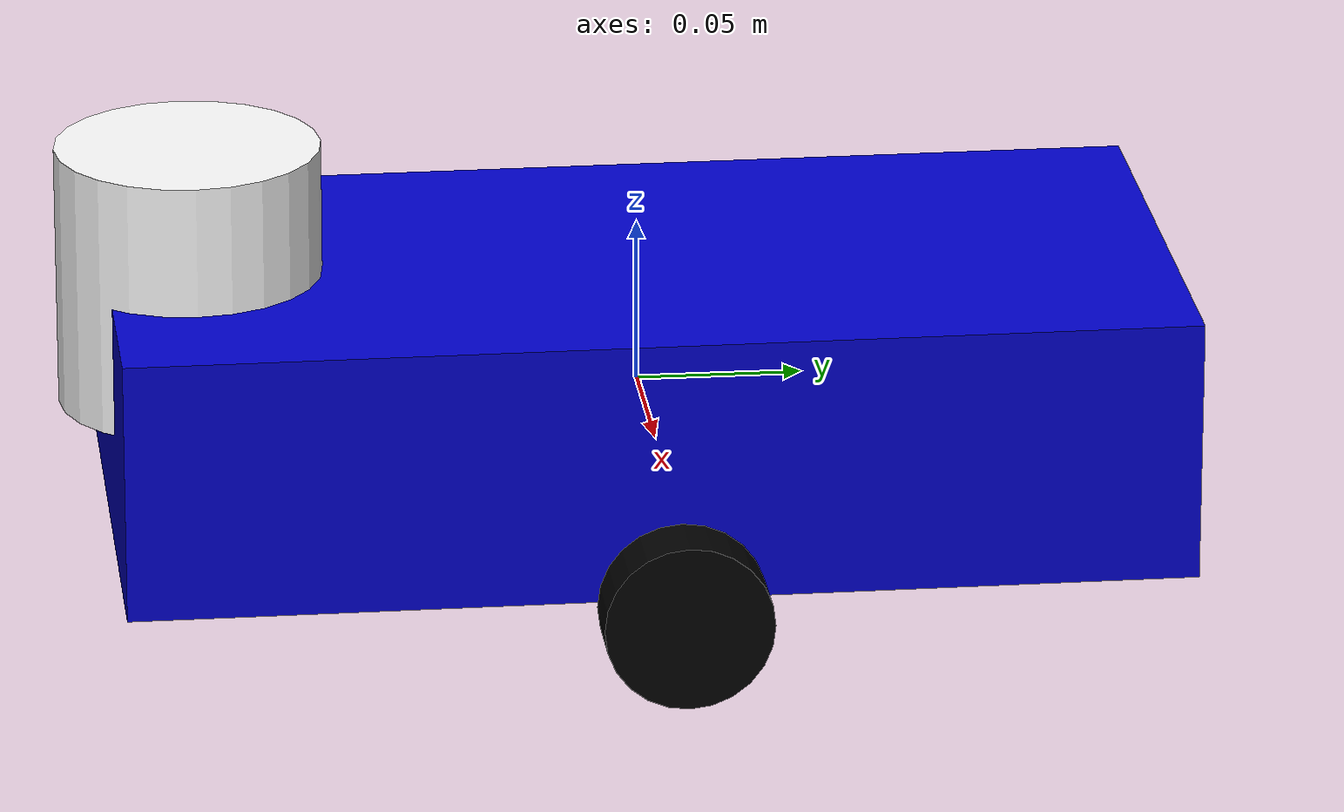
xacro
<?xml version="1.0"?>

<robot name="seeing_sim_car"
	xmlns:xi="http://www.w3.org/2001/XInclude"
	xmlns:gazebo="http://playerstage.sourceforge.net/gazebo/xmlschema/#gz"
	xmlns:model="http://playerstage.sourceforge.net/gazebo/xmlschema/#model"
	xmlns:sensor="http://playerstage.sourceforge.net/gazebo/xmlschema/#sensor"
	xmlns:body="http://playerstage.sourceforge.net/gazebo/xmlschema/#body"
	xmlns:geom="http://playerstage.sourceforge.net/gazebo/xmlschema/#geom"
	xmlns:joint="http://playerstage.sourceforge.net/gazebo/xmlschema/#joint"
	xmlns:controller="http://playerstage.sourceforge.net/gazebo/xmlschema/#controller"
	xmlns:interface="http://playerstage.sourceforge.net/gazebo/xmlschema/#interface"
	xmlns:rendering="http://playerstage.sourceforge.net/gazebo/xmlschema/#rendering"
	xmlns:renderable="http://playerstage.sourceforge.net/gazebo/xmlschema/#renderable"
	xmlns:physics="http://playerstage.sourceforge.net/gazebo/xmlschema/#physics"
	xmlns:xacro="http://ros.org/wiki/xacro">

	<include filename="$(find seeing_sim_car)/urdf/seeing_sim_car_body.xacro" />

	<!-- Body of SmartCar, with plates, standoffs and Create (including sim sensors) -->
	<seeing_sim_car_body/>

	<seeing_sim_car_sim/>

</robot>

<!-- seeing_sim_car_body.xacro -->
<robot name="seeing_sim_car" xmlns:xacro="http://ros.org/wiki/xacro">
  <property name="M_PI" value="3.14159"/>

  <!-- Macro for SmartCar body. Including Gazebo extensions, but does not include Kinect -->
  <include filename="$(find seeing_sim_car)/urdf/seeing_sim_car_gazebo.xacro"/>

  <property name="base_x" value="0.33" />
  <property name="base_y" value="0.33" />

  <xacro:macro name="seeing_sim_car_body">

  <link name="base_link">
    <visual>
      <geometry>
      <box size="0.32 0.16 0.08"/>
      </geometry>
      <origin rpy="0 0 1.57057" xyz="0 0 0"/>
      <material name="blue">
      <color rgba="0 0 .8 1"/>
      </material>
   </visual>
  </link>

  <link name="front_fit_wheel">
    <visual>
      <geometry>
        <cylinder length=".02" radius="0.025"/>
      </geometry>
      <material name="black">
        <color rgba="0 0 0 1"/>
      </material>
    </visual>
  </link>

  <joint name="front_fit_wheel_joint" type="fixed">
    <axis xyz="0 0 1"/>
    <parent link="base_link"/>
    <child link="front_fit_wheel"/>
    <origin rpy="0 1.57075 0" xyz="0 0.12 -0.025"/>
    <limit effort="100" velocity="100"/>
    <joint_properties damping="0.0" friction="0.0"/>
  </joint>

 <link name="left_back_wheel">
    <visual>
      <geometry>
        <cylinder length=".02" radius="0.025"/>
      </geometry>
      <material name="black">
        <color rgba="0 0 0 1"/>
      </material>
   </visual>
  </link>

  <joint name="left_back_wheel_joint" type="continuous">
    <axis xyz="0 0 1"/>
    <parent link="base_link"/>
    <child link="left_back_wheel"/>
    <origin rpy="0 1.57075 0" xyz="-0.13 0 -0.025"/>
    <limit effort="100" velocity="100"/>
    <joint_properties damping="0.0" friction="0.0"/>
  </joint>

  <link name="right_back_wheel">
    <visual>
      <geometry>
        <cylinder length=".02" radius="0.025"/>
      </geometry>
      <material name="black">
        <color rgba="0 0 0 1"/>
      </material>
   </visual>
  </link>

  <joint name="right_back_wheel_joint" type="continuous">
    <axis xyz="0 0 1"/>
    <parent link="base_link"/>
    <child link="right_back_wheel"/>
    <origin rpy="0 1.57075 0" xyz="0.13 0 -0.025"/>
    <limit effort="100" velocity="100"/>
    <joint_properties damping="0.0" friction="0.0"/>
  </joint>

  <link name="base_laser_link">
    <visual>
      <geometry>
        <cylinder length="0.08" radius="0.04"/>
      </geometry>
      <material name="white">
        <color rgba="1 1 1 1"/>
      </material>
     </visual>
  </link>

  <joint name="laser" type="fixed">
    <parent link="base_link"/>
    <child link="base_laser_link"/>
    <origin rpy="0 0 0" xyz="0 -0.135 0.04"/>
  </joint>
  </xacro:macro>

</robot>
